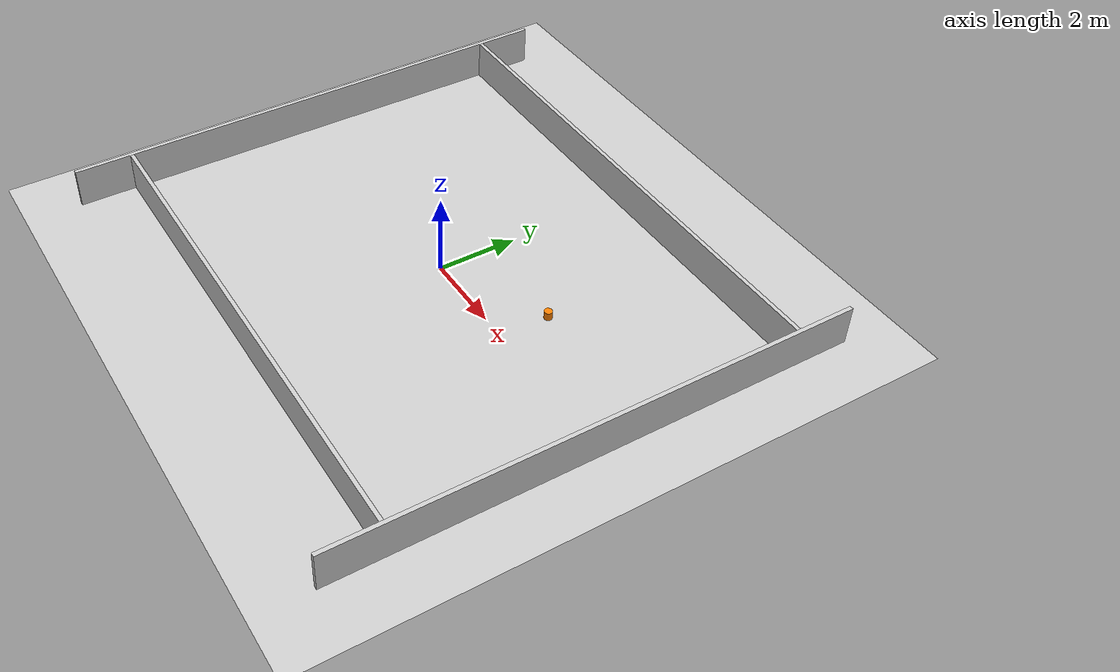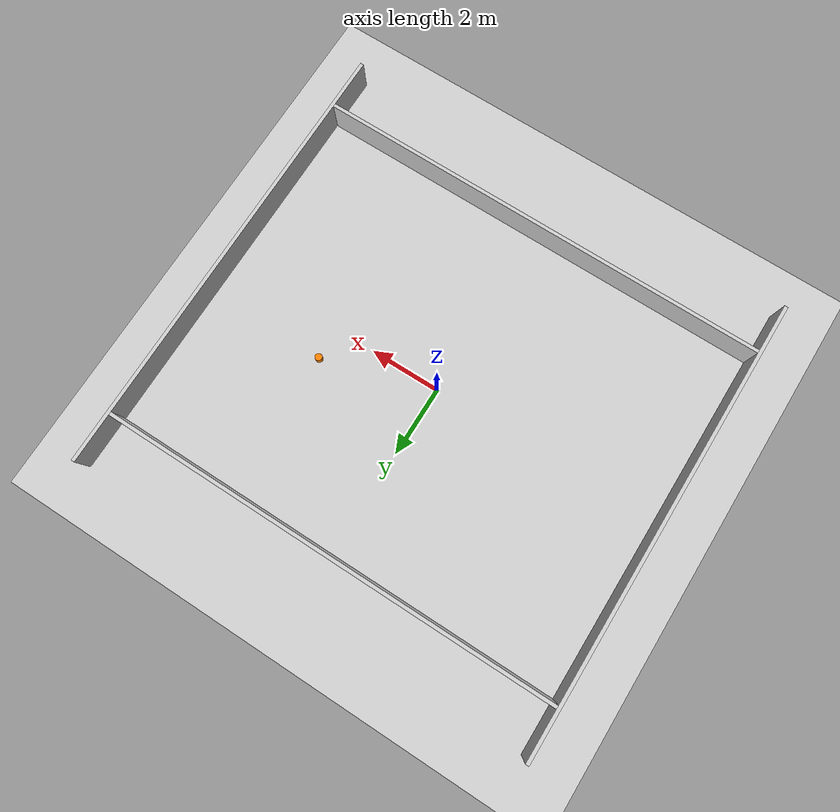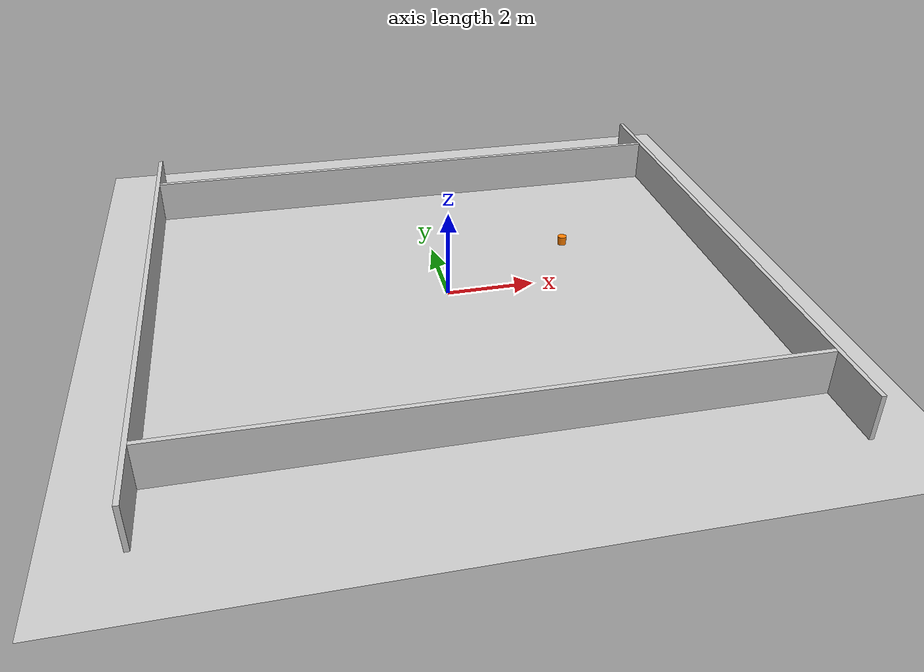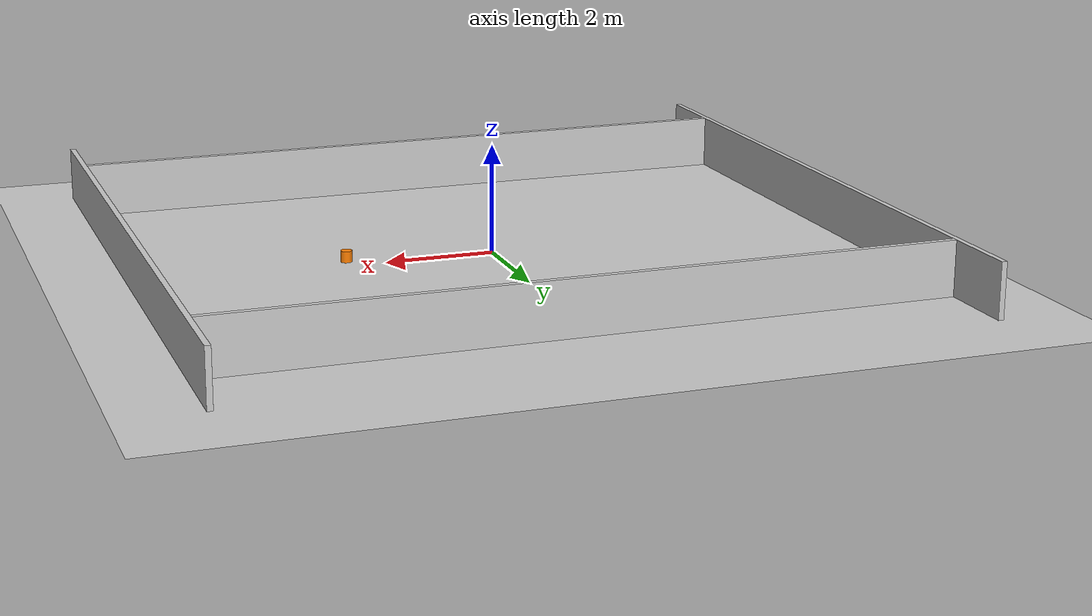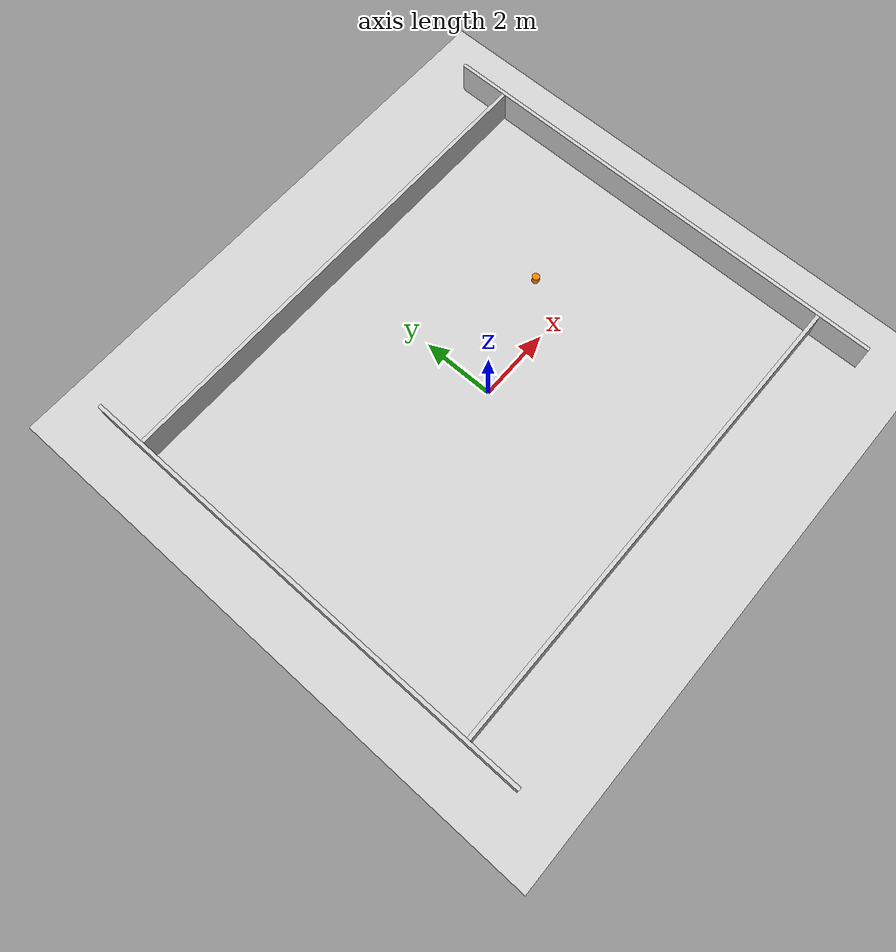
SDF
<?xml version="1.0"?>
<sdf version="1.6">
  <world name="empty">
    <physics type="ode">
      <max_step_size>0.001</max_step_size>
      <real_time_factor>5</real_time_factor>
      <real_time_update_rate>1000</real_time_update_rate>
    </physics>

    <!-- 조명 설정 -->
    <include>
      <uri>model://sun</uri>
    </include>

    <!-- 땅바닥 설정 -->
    <include>
      <uri>model://ground_plane</uri>
    </include>

    <!-- 월드 플러그인 -->
    <plugin name="gas_world_plugin" filename="libgazebo_ros_state.so">
      <ros>
        <namespace>/gazebo</namespace>
      </ros>
      <update_rate>1.0</update_rate>
    </plugin>

    <!-- 외부 벽 -->
    <model name="gas_obstacle_wall_left">
      <static>true</static>
      <pose>-6.55 0 0.5 0 0 0</pose>
      <link name="link">
        <collision name="collision">
          <geometry><box><size>0.1 13 1</size></box></geometry>
        </collision>
        <visual name="visual">
          <geometry><box><size>0.1 13 1</size></box></geometry>
          <material>
            <ambient>0.8 0.8 0.8 1</ambient>
            <diffuse>0.8 0.8 0.8 1</diffuse>
          </material>
        </visual>
      </link>
    </model>
    <model name="gas_obstacle_wall_right">
      <static>true</static>
      <pose>6.55 0 0.5 0 0 0</pose>
      <link name="link">
        <collision name="collision">
          <geometry><box><size>0.1 13 1</size></box></geometry>
        </collision>
        <visual name="visual">
          <geometry><box><size>0.1 13 1</size></box></geometry>
          <material>
            <ambient>0.8 0.8 0.8 1</ambient>
            <diffuse>0.8 0.8 0.8 1</diffuse>
          </material>
        </visual>
      </link>
    </model>
    <model name="gas_obstacle_wall_top">
      <static>true</static>
      <pose>0 5.05 0.5 0 0 0</pose>
      <link name="link">
        <collision name="collision">
          <geometry><box><size>13 0.1 1</size></box></geometry>
        </collision>
        <visual name="visual">
          <geometry><box><size>13 0.1 1</size></box></geometry>
          <material>
            <ambient>0.8 0.8 0.8 1</ambient>
            <diffuse>0.8 0.8 0.8 1</diffuse>
          </material>
        </visual>
      </link>
    </model>
    <model name="gas_obstacle_wall_bottom">
      <static>true</static>
      <pose>0 -5.05 0.5 0 0 0</pose>
      <link name="link">
        <collision name="collision">
          <geometry><box><size>13 0.1 1</size></box></geometry>
        </collision>
        <visual name="visual">
          <geometry><box><size>13 0.1 1</size></box></geometry>
          <material>
            <ambient>0.8 0.8 0.8 1</ambient>
            <diffuse>0.8 0.8 0.8 1</diffuse>
          </material>
        </visual>
      </link>
    </model>

    <!-- 가스 소스 모델 -->
    <model name="gas_source">
      <static>true</static>
      <pose>3 1 0.5 0 0 0</pose>
      <link name="link">
        <collision name="collision">
          <geometry>
            <cylinder>
              <radius>0.1</radius>
              <length>0.2</length>
            </cylinder>
          </geometry>
        </collision>
        <visual name="visual">
          <geometry>
            <cylinder>
              <radius>0.1</radius>
              <length>0.2</length>
            </cylinder>
          </geometry>
          <material>
            <ambient>1 0.5 0 1</ambient>
            <diffuse>1 0.5 0 1</diffuse>
            <emissive>1 0.5 0 1</emissive>
          </material>
        </visual>
      </link>
      <plugin name="gas_source_plugin" filename="libgas_source_plugin.so">
        <initial_concentration>100.0</initial_concentration>
        <radius>0.1</radius>
      </plugin>
    </model>
  </world>
</sdf>
